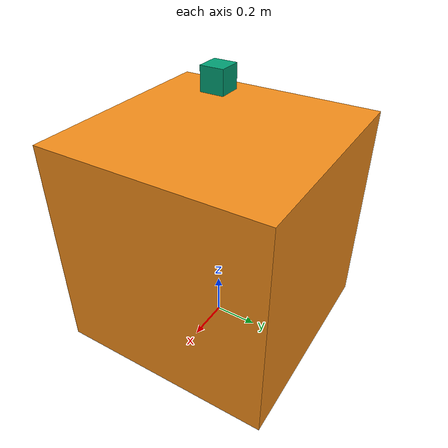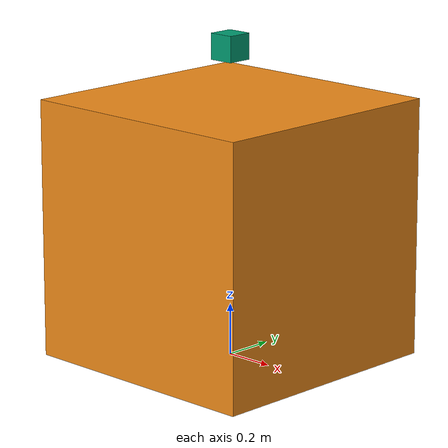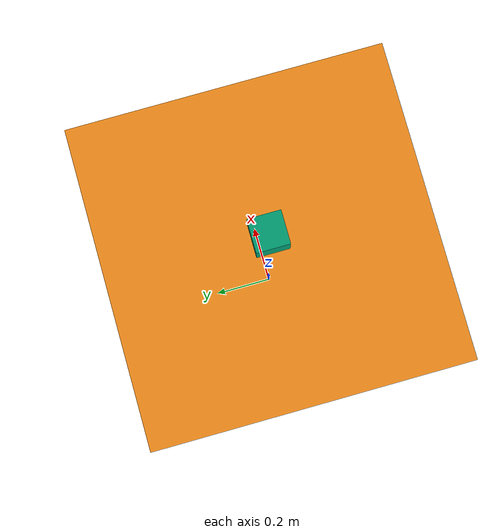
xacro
<?xml version="1.0"?>

<robot name="laser" xmlns:xacro="http://ros.org/wiki/xacro">

	<xacro:property name="height1" value="1"/>
	<xacro:property name="width" value="1"/>

	<!-- LINKS -->
	<link name="world"/>

	<!-- Base Link -->
  <link name="link1">
    <collision>
      <origin xyz="0 0 ${height1/2}" rpy="0 0 0"/>
      <geometry>
        <box size="${width} ${width} ${height1}"/>
      </geometry>
    </collision>

    <visual>
      <origin xyz="0 0 ${height1/2}" rpy="0 0 0"/>
      <geometry>
        <box size="${width} ${width} ${height1}"/>
      </geometry>
      <material name="orange"/>
    </visual>

    <inertial>
      <origin xyz="0 0 1" rpy="0 0 0"/>
      <mass value="1"/>
      <inertia
        ixx="1.0" ixy="0.0" ixz="0.0"
        iyy="1.0" iyz="0.0"
        izz="1.0"/>
    </inertial>
  </link>

	 <!-- Hokuyo Laser -->
  <link name="hokuyo_link">
    <collision>
      <origin xyz="0 0 0" rpy="0 0 0"/>
      <geometry>
    		<box size="0.1 0.1 0.1"/>
      </geometry>
    </collision>

    <visual>
      <origin xyz="0 0 0" rpy="0 0 0"/>
      <geometry>
        <box size=" 0.1 0.1 0.1"/>
      </geometry>
    </visual>

    <inertial>
      <mass value="1e-5" />
      <origin xyz="0 0 0" rpy="0 0 0"/>
      <inertia ixx="1e-6" ixy="0" ixz="0" iyy="1e-6" iyz="0" izz="1e-6" />
    </inertial>
  </link>

	<!-- JOINTS -->

	<joint name="fixed" type="fixed">
    <parent link="world"/>
    <child link="link1"/>
  </joint>

	<joint name="hokuyo_joint" type="fixed">
    <axis xyz="0 1 0" />
    <origin xyz="0 0 ${height1+0.2}" rpy="0 0 0"/>
    <parent link="link1"/>
    <child link="hokuyo_link"/>
  </joint>

	<!-- Gazebo -->
	  <!-- hokuyo -->
  <gazebo reference="hokuyo_link">
    <sensor type="ray" name="head_hokuyo_sensor">
      <pose>0 0 0 0 0 0</pose>
      <visualize>true</visualize>
      <update_rate>40</update_rate>
      <ray>
        <scan>
          <horizontal>
            <samples>720</samples>
            <resolution>1</resolution>
            <min_angle>-1.570796</min_angle>
            <max_angle>1.570796</max_angle>
          </horizontal>
        </scan>
        <range>
          <min>0.10</min>
          <max>30.0</max>
          <resolution>0.01</resolution>
        </range>
        <noise>
          <type>gaussian</type>
          <mean>0.0</mean>
          <stddev>0.01</stddev>
        </noise>
      </ray>
      <plugin name="gazebo_ros_head_hokuyo_controller" filename="libgazebo_ros_laser.so">
        <topicName>/scan</topicName>
        <frameName>hokuyo_link</frameName>
      </plugin>
    </sensor>
  </gazebo>

</robot>
